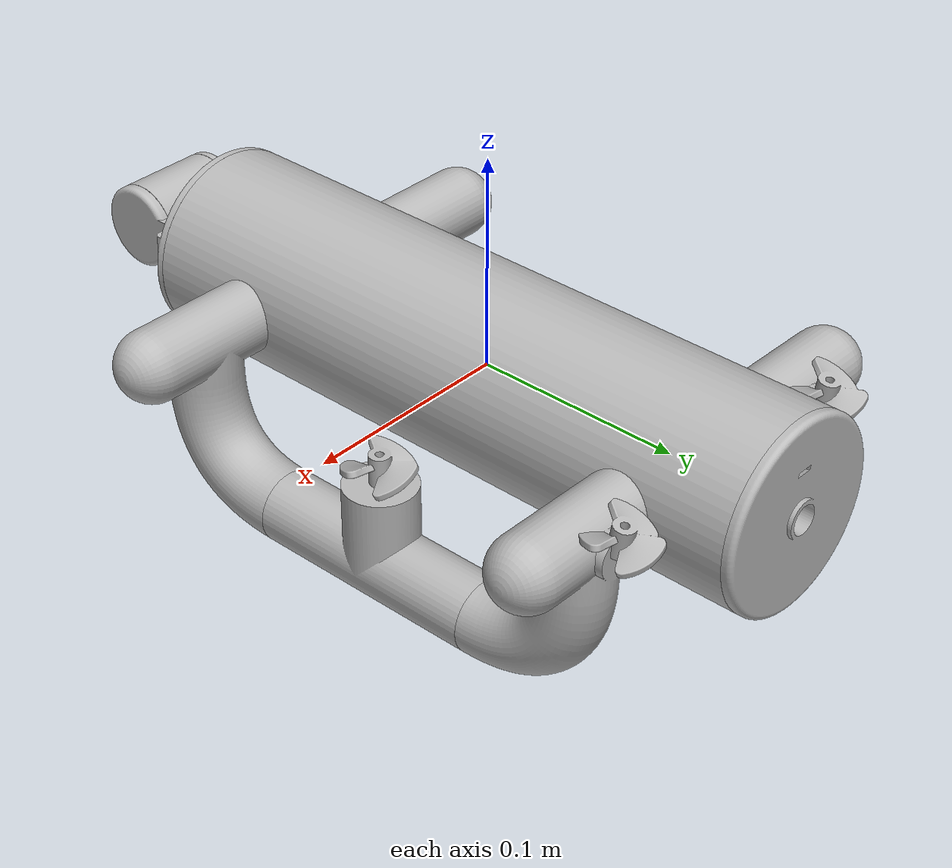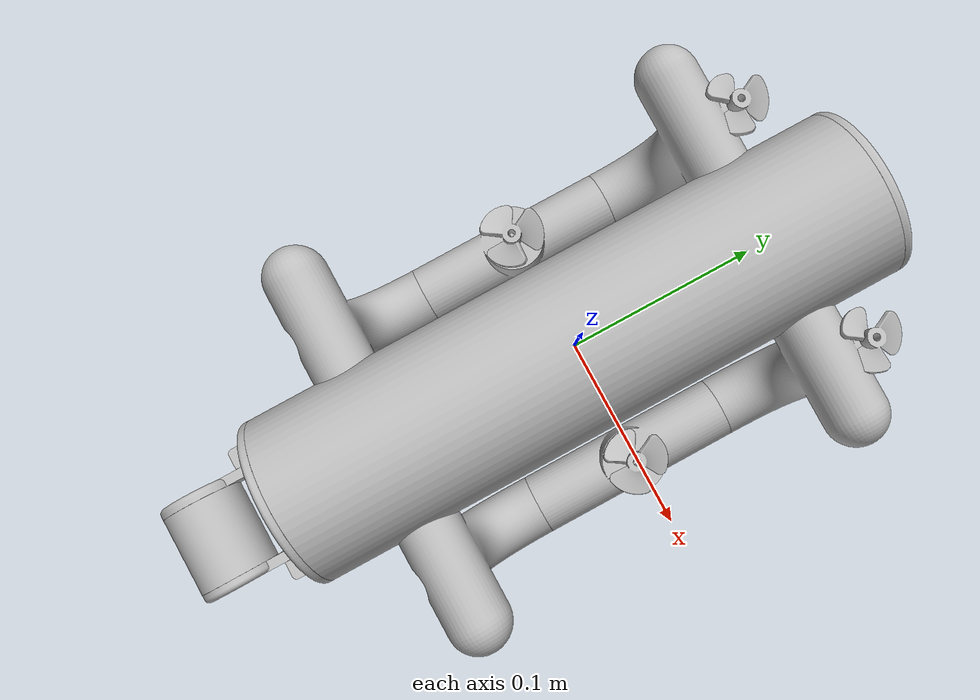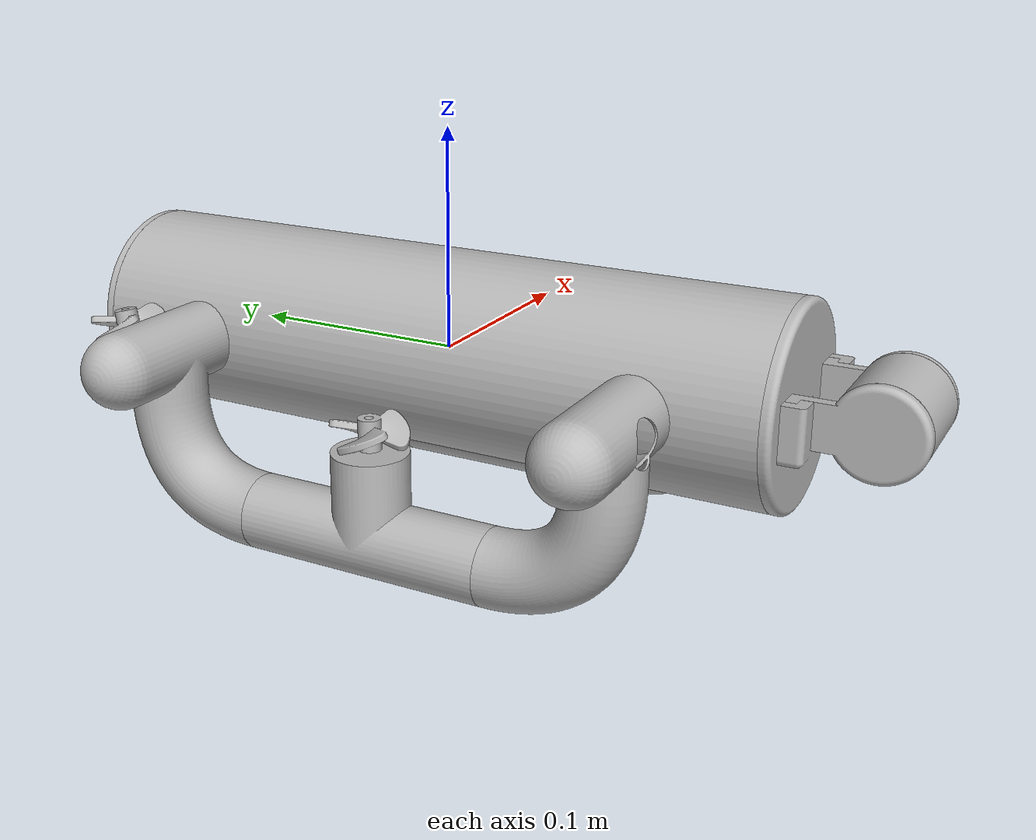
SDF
<sdf version="1.10">
    <model name='drone' canonical_link='hull'>
        <static>false</static>

        <link name='hull'>
            <pose relative_to='__model__'>0 0 0 0 0 0</pose>

            <inertial>
                <mass>0.31</mass>
                <inertia>
                    <ixx>0.002699</ixx>
                    <ixy>0</ixy>
                    <ixz>0</ixz>
                    <iyy>0.002699</iyy>
                    <iyz>0</iyz>
                    <izz>0.000587</izz>
                </inertia>
            </inertial>

            <visual name='visual'>
                <geometry>
                    <mesh>
                        <uri>meshes/Hull.obj</uri>
                        <scale>1 1 1</scale>
                    </mesh>
                </geometry>
            </visual>

            <collision name='col_hull'>
                <geometry>
                    <mesh>
                        <uri>meshes/Hull.obj</uri>
                        <scale>1 1 1</scale>
                    </mesh>
                </geometry>
            </collision>
        </link>

        <!-- No joint required as 'chassis' -->

        <link name='end_cap'>
            <pose relative_to='hull'>0 0.165 0 0 0 0</pose>

            <inertial>
                <mass>0.05</mass>
                <inertia>
                    <ixx>0.000027 </ixx>
                    <ixy>0</ixy>
                    <ixz>0</ixz>
                    <iyy>0.000027 </iyy>
                    <iyz>0</iyz>
                    <izz>0.000051 </izz>
                </inertia>
            </inertial>

            <visual name='visual'>
                <geometry>
                    <mesh>
                        <uri>meshes/EndCap.obj</uri>
                        <scale>1 1 1</scale>
                    </mesh>
                </geometry>
            </visual>
        </link>

        <joint name='end_cap_joint' type='fixed'>
            <pose relative_to='end_cap'/>
            <parent>hull</parent>
            <child>end_cap</child>
        </joint>

        <link name='front_cap'>
            <pose relative_to='hull'>0 -0.165 0 0 0 0</pose>

            <inertial>
                <mass>0.05</mass>
                <inertia>
                    <ixx>0.000027 </ixx>
                    <ixy>0</ixy>
                    <ixz>0</ixz>
                    <iyy>0.000027 </iyy>
                    <iyz>0</iyz>
                    <izz>0.000051 </izz>
                </inertia>
            </inertial>

            <visual name='visual'>
                <geometry>
                    <mesh>
                        <uri>meshes/FrontCap.obj</uri>
                        <scale>1 1 1</scale>
                    </mesh>
                </geometry>
            </visual>
        </link>

        <joint name='front_cap_joint' type='fixed'>
            <pose relative_to='front_cap'/>
            <parent>hull</parent>
            <child>front_cap</child>
        </joint>

        <link name='camera_cap_l'>
            <pose relative_to='front_cap'>0.016 -0.035 0.0025 0 0 0</pose>

            <inertial>
                <mass>0.025</mass>
                <inertia>
                    <ixx>0.000003</ixx>
                    <ixy>0</ixy>
                    <ixz>0</ixz>
                    <iyy>0.000003</iyy>
                    <iyz>0</iyz>
                    <izz>0.000005</izz>
                </inertia>
            </inertial>

            <visual name='visual'>
                <geometry>
                    <mesh>
                        <uri>meshes/CameraCapL.obj</uri>
                        <scale>1 1 1</scale>
                    </mesh>
                </geometry>
            </visual>

            <collision name='col_camera_cap_l'>
                <geometry>
                    <mesh>
                        <uri>meshes/CameraCapL.obj</uri>
                        <scale>1 1 1</scale>
                    </mesh>
                </geometry>
            </collision>
        </link>

        <joint name='camera_cap_l_joint' type='fixed'>
            <pose relative_to='front_cap'/>
            <parent>front_cap</parent>
            <child>camera_cap_l</child>
        </joint>

        <link name='camera_cap_r'>
            <pose relative_to='front_cap'>-0.016 -0.035 0.0025 0 0 0</pose>

            <inertial>
                <mass>0.025</mass>
                <inertia>
                    <ixx>0.000003</ixx>
                    <ixy>0</ixy>
                    <ixz>0</ixz>
                    <iyy>0.000003</iyy>
                    <iyz>0</iyz>
                    <izz>0.000005</izz>
                </inertia>
            </inertial>

            <visual name='visual'>
                <geometry>
                    <mesh>
                        <uri>meshes/CameraCapR.obj</uri>
                        <scale>1 1 1</scale>
                    </mesh>
                </geometry>
            </visual>

            <collision name='col_camera_cap_r'>
                <geometry>
                    <mesh>
                        <uri>meshes/CameraCapR.obj</uri>
                        <scale>1 1 1</scale>
                    </mesh>
                </geometry>
            </collision>
        </link>

        <joint name='camera_cap_r_joint' type='fixed'>
            <pose relative_to='front_cap'/>
            <parent>front_cap</parent>
            <child>camera_cap_r</child>
        </joint>

        <link name='camera_hull'>
            <pose relative_to='camera_cap_r'>0.016 0 0 0 0 0</pose>

            <inertial>
                <mass>0.01</mass>
                <inertia>
                    <ixx>0.000003</ixx>
                    <ixy>0</ixy>
                    <ixz>0</ixz>
                    <iyy>0.000003</iyy>
                    <iyz>0</iyz>
                    <izz>0.000004</izz>
                </inertia>
            </inertial>

            <sensor name="camera" type="camera" >
                <camera>
                  <horizontal_fov>1.047</horizontal_fov>
                  <image>
                    <width>320</width>
                    <height>240</height>
                  </image>
                  <clip>
                    <near>0.1</near>
                    <far>100</far>
                  </clip>
                </camera>
                <always_on>1</always_on>
                <update_rate>30</update_rate>
                <visualize>true</visualize>
                <topic>camera</topic>
            </sensor>

            <visual name='visual'>
                <geometry>
                    <mesh>
                        <uri>meshes/CameraHull.obj</uri>
                        <scale>1 1 1</scale>
                    </mesh>
                </geometry>
            </visual>

            <collision name='col_camera_hull'>
                <geometry>
                    <mesh>
                        <uri>meshes/CameraHull.obj</uri>
                        <scale>1 1 1</scale>
                    </mesh>
                </geometry>
            </collision>
        </link>

        <joint name='camera_hull_joint' type='fixed'>
            <pose relative_to='camera_cap_l'/>
            <parent>camera_cap_l</parent>
            <child>camera_hull</child>
        </joint>

        <!-- Left Support Pipe -->

        <link name='support_pipe_f_l'>
            <pose relative_to='hull'>0.045 -0.1075 0 0 0 0</pose>

            <!-- TODO: Inertia -->

            <visual name='visual'>
                <geometry>
                    <mesh>
                        <uri>meshes/SupportPipeFL.obj</uri>
                        <scale>1 1 1</scale>
                    </mesh>
                </geometry>
            </visual>

            <collision name='col_support_pipe_f_l'>
                <geometry>
                    <mesh>
                        <uri>meshes/SupportPipeFL.obj</uri>
                        <scale>1 1 1</scale>
                    </mesh>
                </geometry>
            </collision>
        </link>

        <joint name='support_pipe_f_l_joint' type='fixed'>
            <pose relative_to='hull'/>
            <parent>hull</parent>
            <child>support_pipe_f_l</child>
        </joint>

        <link name='support_pipe_m_l'>
            <pose relative_to='support_pipe_f_l'>0.0225 0.05 -0.067 0 0 0</pose>

            <!-- TODO: Inertia -->

            <visual name='visual'>
                <geometry>
                    <mesh>
                        <uri>meshes/SupportPipeML.obj</uri>
                        <scale>1 1 1</scale>
                    </mesh>
                </geometry>
            </visual>

            <collision name='col_support_pipe_m_l'>
                <geometry>
                    <mesh>
                        <uri>meshes/SupportPipeML.obj</uri>
                        <scale>1 1 1</scale>
                    </mesh>
                </geometry>
            </collision>
        </link>

        <joint name='support_pipe_m_l_joint' type='fixed'>
            <pose relative_to='support_pipe_f_l'/>
            <parent>support_pipe_f_l</parent>
            <child>support_pipe_m_l</child>
        </joint>

        <link name='support_pipe_l_b'>
            <pose relative_to='hull'>0.045 0.1075 0 0 0 0</pose>

            <!-- TODO: Inertia -->

            <visual name='visual'>
                <geometry>
                    <mesh>
                        <uri>meshes/SupportPipeBL.obj</uri>
                        <scale>1 1 1</scale>
                    </mesh>
                </geometry>
            </visual>

            <collision name='col_support_pipe_l_b'>
                <geometry>
                    <mesh>
                        <uri>meshes/SupportPipeBL.obj</uri>
                        <scale>1 1 1</scale>
                    </mesh>
                </geometry>
            </collision>
        </link>

        <joint name='support_pipe_l_b_joint' type='fixed'>
            <pose relative_to='hull'/>
            <parent>hull</parent>
            <child>support_pipe_l_b</child>
        </joint>

        <link name='prop_l_vert'>
            <pose relative_to='support_pipe_m_l'>0 0.0575 0.038 0 0 0</pose>

            <!-- TODO: Inertia -->

            <visual name='visual'>
                <geometry>
                    <mesh>
                        <uri>meshes/Propeller.obj</uri>
                        <scale>1 1 1</scale>
                    </mesh>
                </geometry>
            </visual>

            <!-- No Collision Box Needed -->
        </link>

        <joint name='prop_l_vert_joint' type='fixed'>
            <pose relative_to='support_pipe_m_l'/>
            <parent>support_pipe_m_l</parent>
            <child>prop_l_vert</child>
        </joint>

        <link name='prop_l_hori'>
            <pose relative_to='support_pipe_l_b' degrees="1">0.0225 0.02 0 270 0 0</pose>

            <!-- TODO: Inertia -->

            <visual name='visual'>
                <geometry>
                    <mesh>
                        <uri>meshes/Propeller.obj</uri>
                        <scale>1 1 1</scale>
                    </mesh>
                </geometry>
            </visual>
        </link>

        <joint name='prop_l_hori_joint' type='fixed'>
            <pose relative_to='support_pipe_l_b'/>
            <parent>support_pipe_l_b</parent>
            <child>prop_l_hori</child>
        </joint>

        <!-- Right Support Pipe -->
        <link name='support_pipe_f_r'>
            <pose relative_to='hull'>-0.045 -0.1075 0 0 0 0</pose>

            <!-- TODO: Inertia -->

            <visual name='visual'>
                <geometry>
                    <mesh>
                        <uri>meshes/SupportPipeFR.obj</uri>
                        <scale>1 1 1</scale>
                    </mesh>
                </geometry>
            </visual>

            <collision name='col_support_pipe_f_r'>
                <geometry>
                    <mesh>
                        <uri>meshes/SupportPipeFR.obj</uri>
                        <scale>1 1 1</scale>
                    </mesh>
                </geometry>
            </collision>
        </link>

        <joint name='support_pipe_f_r_joint' type='fixed'>
            <pose relative_to='hull'/>
            <parent>hull</parent>
            <child>support_pipe_f_r</child>
        </joint>

        <link name='support_pipe_m_r'>
            <pose relative_to='support_pipe_f_r'>-0.0225 0.05 -0.067 0 0 0</pose>

            <!-- TODO: Inertia -->

            <visual name='visual'>
                <geometry>
                    <mesh>
                        <uri>meshes/SupportPipeMR.obj</uri>
                        <scale>1 1 1</scale>
                    </mesh>
                </geometry>
            </visual>

            <collision name='col_support_pipe_m_r'>
                <geometry>
                    <mesh>
                        <uri>meshes/SupportPipeMR.obj</uri>
                        <scale>1 1 1</scale>
                    </mesh>
                </geometry>
            </collision>
        </link>

        <joint name='support_pipe_m_r_joint' type='fixed'>
            <pose relative_to='support_pipe_f_r'/>
            <parent>support_pipe_f_r</parent>
            <child>support_pipe_m_r</child>
        </joint>

        <link name='support_pipe_r_b'>
            <pose relative_to='hull'>-0.045 0.1075 0 0 0 0</pose>

            <!-- TODO: Inertia -->

            <visual name='visual'>
                <geometry>
                    <mesh>
                        <uri>meshes/SupportPipeBR.obj</uri>
                        <scale>1 1 1</scale>
                    </mesh>
                </geometry>
            </visual>

            <collision name='col_support_pipe_r_b'>
                <geometry>
                    <mesh>
                        <uri>meshes/SupportPipeBR.obj</uri>
                        <scale>1 1 1</scale>
                    </mesh>
                </geometry>
            </collision>
        </link>

        <joint name='support_pipe_r_b_joint' type='fixed'>
            <pose relative_to='hull'/>
            <parent>hull</parent>
            <child>support_pipe_r_b</child>
        </joint>

        <link name='prop_r_vert'>
            <pose relative_to='support_pipe_m_r'>0 0.0575 0.038 0 0 0</pose>

            <!-- TODO: Inertia -->

            <visual name='visual'>
                <geometry>
                    <mesh>
                        <uri>meshes/Propeller.obj</uri>
                        <scale>1 1 1</scale>
                    </mesh>
                </geometry>
            </visual>

            <!-- No Collision Box Needed -->
        </link>

        <joint name='prop_r_vert_joint' type='fixed'>
            <pose relative_to='support_pipe_m_r'/>
            <parent>support_pipe_m_r</parent>
            <child>prop_r_vert</child>
        </joint>

        <link name='prop_r_hori'>
            <pose relative_to='support_pipe_r_b' degrees="1">-0.0225 0.02 0 270 0 0</pose>

            <!-- TODO: Inertia -->

            <visual name='visual'>
                <geometry>
                    <mesh>
                        <uri>meshes/Propeller.obj</uri>
                        <scale>1 1 1</scale>
                    </mesh>
                </geometry>
            </visual>

            <!-- TODO: Add Collision Box -->
        </link>

        <joint name='prop_r_hori_joint' type='fixed'>
            <pose relative_to='support_pipe_r_b'/>
            <parent>support_pipe_r_b</parent>
            <child>prop_r_hori</child>
        </joint>
    </model>
</sdf>
